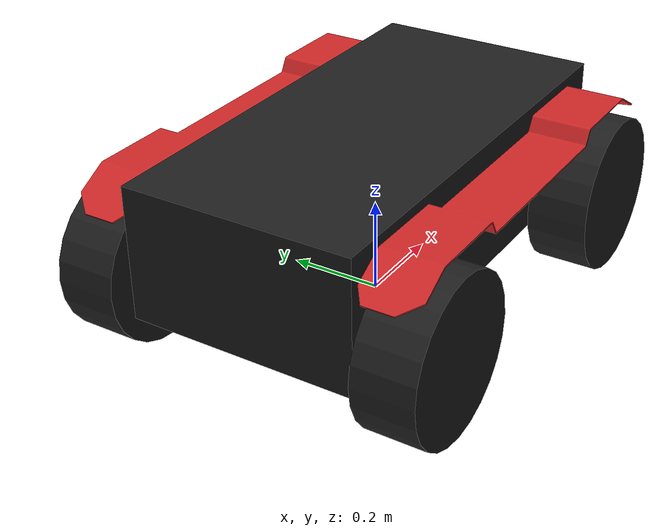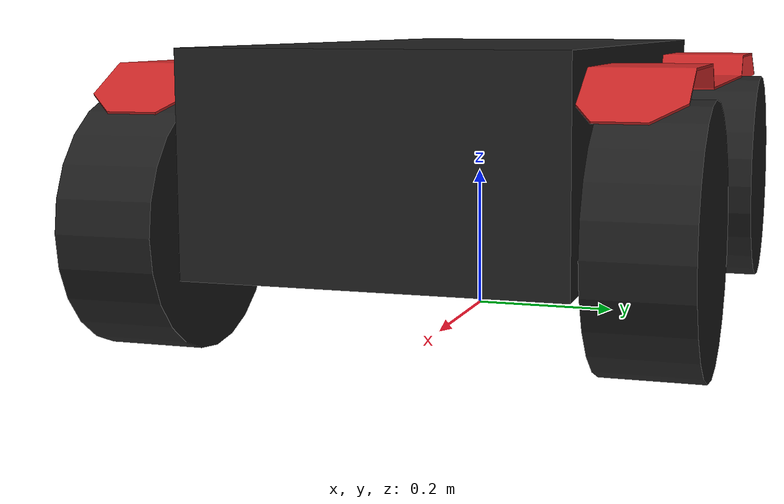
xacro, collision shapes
<?xml version="1.0"?>
<robot name="vtrex" xmlns:xacro="http://www.ros.org/wiki/xacro">
  <xacro:arg name="laser_enabled" default="true" />
  <xacro:property name="PI" value="3.1415926535897931" />

  <xacro:property name="wheelbase" value="0.7" />
  <xacro:property name="track" value="0.64" />
  <xacro:property name="wheel_vertical_offset" value="0.1651" />
  <xacro:property name="footprint_vertical_offset" value=".24866" />

  <xacro:property name="wheel_cover_y_spacing" value="0.291" />
  <xacro:property name="wheel_cover_z_spacing" value="0.344" />

  <xacro:property name="wheel_radius" value="0.1651" />
  <xacro:property name="wheel_width" value="0.127" />

  <xacro:property name="chassis_length" value="0.95" />
  <xacro:property name="chassis_width" value="0.48" />
  <xacro:property name="chassis_height" value="0.28" />

  <xacro:property name="dummy_inertia" value="1e-09"/>

<xacro:property name="cameraSize" value="0.025"/>
<xacro:property name="cameraMass" value="0.05"/>

 <xacro:include filename="$(find vtrex_description)/urdf/vtrex.gazebo" />
 <xacro:include filename="$(find vtrex_description)/urdf/materials.xacro" />

<xacro:macro name="wheel" params="prefix *joint_pose">

    <link name="${prefix}_wheel_link">
      <visual>
        <origin xyz="-${wheel_radius} ${wheel_width/2} -${wheel_radius}" rpy="${PI/2} 0 0"/>
        <geometry>
       <mesh filename="package://vtrex_description/meshes/wheel.STL"/>
 	</geometry>
        <material name="black" />
      </visual>
      <collision>
        <origin xyz="0 0 0" rpy="${PI/2} 0 0"/>
        <geometry>
         <cylinder radius="${wheel_radius}" length="${wheel_width}"/>
        </geometry>
      </collision>
      <inertial>
        <origin xyz="0 0 0" rpy="0 0 0"/>
        <mass value="3.4"/>
        <inertia
          ixx="0.03" ixy="0" ixz="0"
          iyy="0.05" iyz="0"
          izz="0.03"/>
      </inertial>
    </link>

    <gazebo reference="${prefix}_wheel_link">
      <material>Gazebo/DarkGrey</material>
    </gazebo>

    <joint name="${prefix}_wheel" type="continuous">
      <parent link="chassis_link"/>
      <child link="${prefix}_wheel_link" />
      <xacro:insert_block name="joint_pose" />
      <axis xyz="0 1 0" />
    </joint>

    <!-- In reality, VTREX has only two motors, one per side. However, it's more
         straightforward for Gazebo to simulate as if there's an actuator per wheel. -->
    <transmission name="${prefix}_wheel_trans">
      <type>transmission_interface/SimpleTransmission</type>
      <joint name="${prefix}_wheel">
        <hardwareInterface>VelocityJointInterface</hardwareInterface>
      </joint>
      <actuator name="${prefix}_actuator">
        <mechanicalReduction>1</mechanicalReduction>
      </actuator>
    </transmission>
  </xacro:macro>

  <xacro:wheel prefix="front_left">
    <origin xyz="${wheelbase/2} ${track/2} ${wheel_vertical_offset}" rpy="0 0 0" />
  </xacro:wheel>
  <xacro:wheel prefix="front_right">
    <origin xyz="${wheelbase/2} ${-track/2} ${wheel_vertical_offset}" rpy="0 0 0" />
  </xacro:wheel>
  <xacro:wheel prefix="rear_left">
    <origin xyz="${-wheelbase/2} ${track/2} ${wheel_vertical_offset}" rpy="0 0 0" />
  </xacro:wheel>
  <xacro:wheel prefix="rear_right">
    <origin xyz="${-wheelbase/2} ${-track/2} ${wheel_vertical_offset}" rpy="0 0 0" />
  </xacro:wheel>

  <link name="base_link"></link>

  <joint name="base_link_joint" type="fixed">

    <origin xyz="0 0 0" rpy="0 0 0" />
    <parent link="base_link"/>
    <child link="chassis_link" />
  </joint>

  <link name="chassis_link">
    <visual>
      <origin xyz="0 0 ${footprint_vertical_offset}" rpy="0 0 0"/>
      <geometry>
       <mesh filename="package://vtrex_description/meshes/TREX.STL"/>
      </geometry>
<material name="black" />
     </visual>
    <collision>
      <origin xyz="0 0 ${footprint_vertical_offset}" rpy="0 0 0"/>
      <geometry>
       <box size="${chassis_length} ${chassis_width} ${chassis_height}"/>
      </geometry>
    </collision>
    <inertial>
      <!-- Center of mass -->
      <origin xyz="0.00  0.00 ${footprint_vertical_offset}" rpy="0 0 0"/>
      <mass value="40"/>
      <!-- Moments of inertia: ( chassis without wheels ) -->
      <inertia
        ixx="2" ixy="-0.01" ixz="-0.00"
        iyy="3.68" iyz="-0.0000"
        izz="4.85"/>
      </inertial>
  </link>
    <gazebo reference="chassis_link">
      <material>Gazebo/DarkGrey</material>
    </gazebo>
<!--############################################wheelscover#################################################-->

    <link name="left_wheel_cover_link">
      <visual>
        <origin xyz="0 0 ${wheel_cover_z_spacing}" rpy="0 0 0"/>
        <geometry>
       <mesh filename="package://vtrex_description/meshes/wheelscover.STL"/>
        </geometry>
        <material name="red" />
      </visual>
      <collision>
        <origin xyz="0 0 ${wheel_cover_z_spacing}" rpy="0 0 0"/>
        <geometry>
         <mesh filename="package://vtrex_description/meshes/wheelscover.STL"/>
        </geometry>
      </collision>
      <inertial>
        <origin xyz="0 0 0" rpy="0 0 0"/>
        <mass value="1.3"/>
        <inertia
          ixx="0.00" ixy="0" ixz="0"
          iyy="0.01" iyz="0"
          izz="0.01"/>
      </inertial>
    </link>

    <link name="right_wheel_cover_link">
      <visual>
        <origin xyz="0 0 ${wheel_cover_z_spacing}" rpy="0 0 0"/>
        <geometry>
       <mesh filename="package://vtrex_description/meshes/wheelscover.STL"/>
        </geometry>
        <material name="red" />
      </visual>
      <collision>
        <origin xyz="0 0 ${wheel_cover_z_spacing}" rpy="0 0 0"/>
        <geometry>
         <mesh filename="package://vtrex_description/meshes/wheelscover.STL"/>
        </geometry>
      </collision>
      <inertial>
        <origin xyz="0 0 0" rpy="0 0 0"/>
        <mass value="1.3"/>
        <inertia
          ixx="0.00" ixy="0" ixz="0"
          iyy="0.01" iyz="0"
          izz="0.01"/>
      </inertial>
    </link>

    <gazebo reference="left_wheel_cover_link">
      <material>Gazebo/Red</material>
    </gazebo>
    <gazebo reference="right_wheel_cover_link">
      <material>Gazebo/Red</material>
    </gazebo>

     <joint name="left_wheel_cover" type="fixed">
      <origin xyz="0 0 0" rpy="0 0 0" />
      <parent link="chassis_link"/>
      <child link="left_wheel_cover_link" />
    </joint>
    <joint name="right_wheel_cover" type="fixed">
      <origin xyz="0 0 0" rpy="0 0 ${PI}" />
      <parent link="chassis_link"/>
      <child link="right_wheel_cover_link" />
    </joint>

<!--############################################wheelscover#################################################-->

  <link name="imu_link">
    <inertial>
      <mass value="0.001"/>
      <origin xyz="0 0 0" rpy="0 0 0"/>
      <inertia ixx="${dummy_inertia}" ixy="0.0" ixz="0.0" iyy="${dummy_inertia}" iyz="0.0" izz="${dummy_inertia}"/>
    </inertial>
  </link>
  <joint name="imu_joint" type="fixed">
    <parent link="chassis_link" />
    <child link="imu_link" />
  </joint>

</robot>

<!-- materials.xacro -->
<robot name="vtrex" xmlns:xacro="http://www.ros.org/wiki/xacro">

<material name="vtrex_blue"><color rgba="0.0 0.0 0.8 1.0"/></material >
<material name="vtrex_green"><color rgba="0.0 0.8 0.0 1.0"/></material >
<material name="vtrex_grey"><color rgba="0.2 0.2 0.2 1.0"/></material >
<material name="vtrex_orange"><color rgba="${255/255} ${108/255} ${10/255} 1.0"/></material>
<material name="vtrex_red"><color rgba="0.8 0.0 0.0 1.0"/></material>
<material name="vtrex_white"><color rgba="1.0 1.0 1.0 1.0"/></material>
<material name="vtrex_dark_grey"><color rgba="0.2 0.2 0.2 1.0" /></material>
<material name="vtrex_light_grey"><color rgba="0.4 0.4 0.4 1.0" /></material>
<material name="vtrex_black"><color rgba="0.15 0.15 0.15 1.0" /></material>

</robot>
